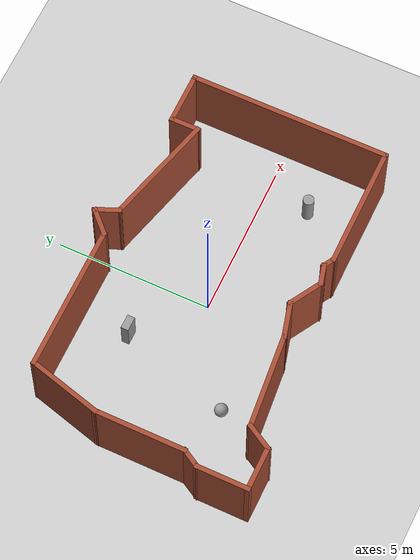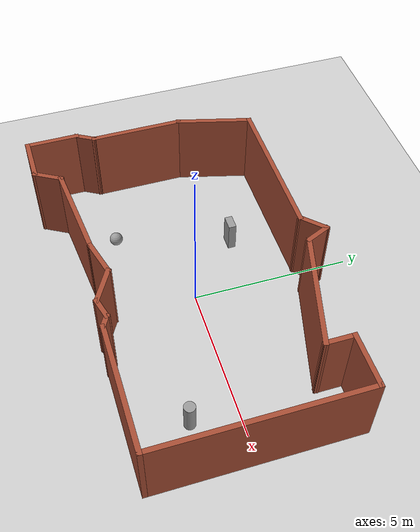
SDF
<sdf version="1.7">
 <world name="default">
  <light name="sun" type="directional">
   <pose>0 0 10 0 -0 0</pose>
   <diffuse>0.8 0.8 0.8 1</diffuse>
   <specular>0.2 0.2 0.2 1</specular>
   <attenuation>
    <range>1000</range>
    <constant>0.9</constant>
    <linear>0.01</linear>
    <quadratic>0.001</quadratic>
   </attenuation>
   <direction>-0.5 0.1 -0.9</direction>
   <spot><inner_angle>0</inner_angle><outer_angle>0</outer_angle><falloff>0</falloff></spot>
  </light>
  <model name="ground_plane">
   <static>1</static>
   <link name="link">
    <collision name="collision">
     <geometry><plane><normal>0 0 1</normal><size>100 100</size></plane></geometry>
     <surface><friction><ode><mu>100</mu><mu2>50</mu2></ode></friction></surface>
    </collision>
    <visual name="visual">
     <cast_shadows>0</cast_shadows>
     <geometry><plane><normal>0 0 1</normal><size>100 100</size></plane></geometry>
     <material>
      <script><uri>file://media/materials/scripts/gazebo.material</uri><name>Gazebo/Grey</name></script>
     </material>
    </visual>
   </link>
  </model>
  <gravity>0 0 -9.8</gravity>
  <magnetic_field>6e-06 2.3e-05 -4.2e-05</magnetic_field>
  <atmosphere type="adiabatic"/>
  <physics type="ode">
   <max_step_size>0.001</max_step_size>
   <real_time_factor>1</real_time_factor>
   <real_time_update_rate>1000</real_time_update_rate>
  </physics>
  <scene><ambient>0.4 0.4 0.4 1</ambient><background>0.7 0.7 0.7 1</background><shadows>1</shadows></scene>
  <spherical_coordinates>
   <surface_model>EARTH_WGS84</surface_model>
   <latitude_deg>0</latitude_deg>
   <longitude_deg>0</longitude_deg>
   <elevation>0</elevation>
   <heading_deg>0</heading_deg>
  </spherical_coordinates>
  <model name="room_torta">
   <pose>0.05403 0.00311 0 0 -0 0</pose>
   <link name="Wall_10">
    <collision name="Wall_10_Collision">
     <geometry><box><size>1 0.15 2.5</size></box></geometry>
     <pose>0 0 1.25 0 -0 0</pose>
    </collision>
    <visual name="Wall_10_Visual">
     <pose>0 0 1.25 0 -0 0</pose>
     <geometry><box><size>1 0.15 2.5</size></box></geometry>
     <material>
      <script><uri>file://media/materials/scripts/gazebo.material</uri><name>Gazebo/Bricks</name></script>
      <ambient>1 1 1 1</ambient>
     </material>
     <meta><layer>0</layer></meta>
    </visual>
    <pose>-4.16127 -3.55404 0 0 -0 -2.0944</pose>
   </link>
   <link name="Wall_11">
    <collision name="Wall_11_Collision">
     <geometry><box><size>1.5 0.15 2.5</size></box></geometry>
     <pose>0 0 1.25 0 -0 0</pose>
    </collision>
    <visual name="Wall_11_Visual">
     <pose>0 0 1.25 0 -0 0</pose>
     <geometry><box><size>1.5 0.15 2.5</size></box></geometry>
     <material>
      <script><uri>file://media/materials/scripts/gazebo.material</uri><name>Gazebo/Bricks</name></script>
      <ambient>1 1 1 1</ambient>
     </material>
     <meta><layer>0</layer></meta>
    </visual>
    <pose>-5.04877 -3.9221 0 0 -0 3.14159</pose>
   </link>
   <link name="Wall_12">
    <collision name="Wall_12_Collision">
     <geometry><box><size>1.75 0.15 2.5</size></box></geometry>
     <pose>0 0 1.25 0 -0 0</pose>
    </collision>
    <visual name="Wall_12_Visual">
     <pose>0 0 1.25 0 -0 0</pose>
     <geometry><box><size>1.75 0.15 2.5</size></box></geometry>
     <material>
      <script><uri>file://media/materials/scripts/gazebo.material</uri><name>Gazebo/Bricks</name></script>
      <ambient>1 1 1 1</ambient>
     </material>
     <meta><layer>0</layer></meta>
    </visual>
    <pose>-5.72377 -3.1221 0 0 -0 1.5708</pose>
   </link>
   <link name="Wall_13">
    <collision name="Wall_13_Collision">
     <geometry><box><size>0.75 0.15 2.5</size></box></geometry>
     <pose>0 0 1.25 0 -0 0</pose>
    </collision>
    <visual name="Wall_13_Visual">
     <pose>0 0 1.25 0 -0 0</pose>
     <geometry><box><size>0.75 0.15 2.5</size></box></geometry>
     <material>
      <script><uri>file://media/materials/scripts/gazebo.material</uri><name>Gazebo/Bricks</name></script>
      <ambient>1 1 1 1</ambient>
     </material>
     <meta><layer>0</layer></meta>
    </visual>
    <pose>-5.57377 -2.06229 0 0 -0 1.0472</pose>
   </link>
   <link name="Wall_14">
    <collision name="Wall_14_Collision">
     <geometry><box><size>3 0.15 2.5</size></box></geometry>
     <pose>0 0 1.25 0 -0 0</pose>
    </collision>
    <visual name="Wall_14_Visual">
     <pose>0 0 1.25 0 -0 0</pose>
     <geometry><box><size>3 0.15 2.5</size></box></geometry>
     <material>
      <script><uri>file://media/materials/scripts/gazebo.material</uri><name>Gazebo/Bricks</name></script>
      <ambient>1 1 1 1</ambient>
     </material>
     <meta><layer>0</layer></meta>
    </visual>
    <pose>-5.42377 -0.377483 0 0 -0 1.5708</pose>
   </link>
   <link name="Wall_15">
    <collision name="Wall_15_Collision">
     <geometry><box><size>2.5 0.15 2.5</size></box></geometry>
     <pose>0 0 1.25 0 -0 0</pose>
    </collision>
    <visual name="Wall_15_Visual">
     <pose>0 0 1.25 0 -0 0</pose>
     <geometry><box><size>2.5 0.15 2.5</size></box></geometry>
     <material>
      <script><uri>file://media/materials/scripts/gazebo.material</uri><name>Gazebo/Bricks</name></script>
      <ambient>1 1 1 1</ambient>
     </material>
     <meta><layer>0</layer></meta>
    </visual>
    <pose>-5.11966 2.18248 0 0 -0 1.309</pose>
   </link>
   <link name="Wall_16">
    <collision name="Wall_16_Collision">
     <geometry><box><size>4.75 0.15 2.5</size></box></geometry>
     <pose>0 0 1.25 0 -0 0</pose>
    </collision>
    <visual name="Wall_16_Visual">
     <pose>0 0 1.25 0 -0 0</pose>
     <geometry><box><size>4.75 0.15 2.5</size></box></geometry>
     <material>
      <script><uri>file://media/materials/scripts/gazebo.material</uri><name>Gazebo/Bricks</name></script>
      <ambient>1 1 1 1</ambient>
     </material>
     <meta><layer>0</layer></meta>
    </visual>
    <pose>-2.51555 3.31744 0 0 -0 0</pose>
   </link>
   <link name="Wall_17">
    <collision name="Wall_17_Collision">
     <geometry><box><size>1 0.15 2.5</size></box></geometry>
     <pose>0 0 1.25 0 -0 0</pose>
    </collision>
    <visual name="Wall_17_Visual">
     <pose>0 0 1.25 0 -0 0</pose>
     <geometry><box><size>1 0.15 2.5</size></box></geometry>
     <material>
      <script><uri>file://media/materials/scripts/gazebo.material</uri><name>Gazebo/Bricks</name></script>
      <ambient>1 1 1 1</ambient>
     </material>
     <meta><layer>0</layer></meta>
    </visual>
    <pose>0.084971 3.61796 0 0 -0 0.785398</pose>
   </link>
   <link name="Wall_18">
    <collision name="Wall_18_Collision">
     <geometry><box><size>0.881926 0.15 2.5</size></box></geometry>
     <pose>0 0 1.25 0 -0 0</pose>
    </collision>
    <visual name="Wall_18_Visual">
     <pose>0 0 1.25 0 -0 0</pose>
     <geometry><box><size>0.881926 0.15 2.5</size></box></geometry>
     <material>
      <script><uri>file://media/materials/scripts/gazebo.material</uri><name>Gazebo/Bricks</name></script>
      <ambient>1 1 1 1</ambient>
     </material>
     <meta><layer>0</layer></meta>
    </visual>
    <pose>0.529692 3.58213 0 0 -0 -1.16578</pose>
   </link>
   <link name="Wall_20">
    <collision name="Wall_20_Collision">
     <geometry><box><size>0.5 0.15 2.5</size></box></geometry>
     <pose>0 0 1.25 0 -0 0</pose>
    </collision>
    <visual name="Wall_20_Visual">
     <pose>0 0 1.25 0 -0 0</pose>
     <geometry><box><size>0.5 0.15 2.5</size></box></geometry>
     <material>
      <script><uri>file://media/materials/scripts/gazebo.material</uri><name>Gazebo/Bricks</name></script>
      <ambient>1 1 1 1</ambient>
     </material>
     <meta><layer>0</layer></meta>
    </visual>
    <pose>1.74967 -3.09848 0 0 -0 2.61799</pose>
   </link>
   <link name="Wall_21">
    <collision name="Wall_21_Collision">
     <geometry><box><size>0.75 0.15 2.5</size></box></geometry>
     <pose>0 0 1.25 0 -0 0</pose>
    </collision>
    <visual name="Wall_21_Visual">
     <pose>0 0 1.25 0 -0 0</pose>
     <geometry><box><size>0.75 0.15 2.5</size></box></geometry>
     <material>
      <script><uri>file://media/materials/scripts/gazebo.material</uri><name>Gazebo/Bricks</name></script>
      <ambient>1 1 1 1</ambient>
     </material>
     <meta><layer>0</layer></meta>
    </visual>
    <pose>1.30834 -3.08862 0 0 -0 -2.87979</pose>
   </link>
   <link name="Wall_22">
    <collision name="Wall_22_Collision">
     <geometry><box><size>1.25 0.15 2.5</size></box></geometry>
     <pose>0 0 1.25 0 -0 0</pose>
    </collision>
    <visual name="Wall_22_Visual">
     <pose>0 0 1.25 0 -0 0</pose>
     <geometry><box><size>1.25 0.15 2.5</size></box></geometry>
     <material>
      <script><uri>file://media/materials/scripts/gazebo.material</uri><name>Gazebo/Bricks</name></script>
      <ambient>1 1 1 1</ambient>
     </material>
     <meta><layer>0</layer></meta>
    </visual>
    <pose>0.542248 -2.89127 0 0 -0 2.61799</pose>
   </link>
   <link name="Wall_23">
    <collision name="Wall_23_Collision">
     <geometry><box><size>1.25 0.15 2.5</size></box></geometry>
     <pose>0 0 1.25 0 -0 0</pose>
    </collision>
    <visual name="Wall_23_Visual">
     <pose>0 0 1.25 0 -0 0</pose>
     <geometry><box><size>1.25 0.15 2.5</size></box></geometry>
     <material>
      <script><uri>file://media/materials/scripts/gazebo.material</uri><name>Gazebo/Bricks</name></script>
      <ambient>1 1 1 1</ambient>
     </material>
     <meta><layer>0</layer></meta>
    </visual>
    <pose>-0.465326 -2.75862 0 0 -0 -2.87979</pose>
   </link>
   <link name="Wall_24">
    <collision name="Wall_24_Collision">
     <geometry><box><size>3.11592 0.15 2.5</size></box></geometry>
     <pose>0 0 1.25 0 -0 0</pose>
    </collision>
    <visual name="Wall_24_Visual">
     <pose>0 0 1.25 0 -0 0</pose>
     <geometry><box><size>3.11592 0.15 2.5</size></box></geometry>
     <material>
      <script><uri>file://media/materials/scripts/gazebo.material</uri><name>Gazebo/Bricks</name></script>
      <ambient>1 1 1 1</ambient>
     </material>
     <meta><layer>0</layer></meta>
    </visual>
    <pose>-2.47268 -3.04347 0 0 -0 -3.04535</pose>
   </link>
   <link name="Wall_4">
    <collision name="Wall_4_Collision">
     <geometry><box><size>3.75 0.15 2.5</size></box></geometry>
     <pose>0 0 1.25 0 -0 0</pose>
    </collision>
    <visual name="Wall_4_Visual">
     <pose>0 0 1.25 0 -0 0</pose>
     <geometry><box><size>3.75 0.15 2.5</size></box></geometry>
     <material>
      <script><uri>file://media/materials/scripts/gazebo.material</uri><name>Gazebo/Bricks</name></script>
      <ambient>1 1 1 1</ambient>
     </material>
     <meta><layer>0</layer></meta>
    </visual>
    <pose>2.41256 2.7799 0 0 -0 -0.261799</pose>
   </link>
   <link name="Wall_5">
    <collision name="Wall_5_Collision">
     <geometry><box><size>1 0.15 2.5</size></box></geometry>
     <pose>0 0 1.25 0 -0 0</pose>
    </collision>
    <visual name="Wall_5_Visual">
     <pose>0 0 1.25 0 -0 0</pose>
     <geometry><box><size>1 0.15 2.5</size></box></geometry>
     <material>
      <script><uri>file://media/materials/scripts/gazebo.material</uri><name>Gazebo/Bricks</name></script>
      <ambient>1 1 1 1</ambient>
     </material>
     <meta><layer>0</layer></meta>
    </visual>
    <pose>4.15123 2.73902 0 0 -0 1.5708</pose>
   </link>
   <link name="Wall_6">
    <collision name="Wall_6_Collision">
     <geometry><box><size>1.75 0.15 2.5</size></box></geometry>
     <pose>0 0 1.25 0 -0 0</pose>
    </collision>
    <visual name="Wall_6_Visual">
     <pose>0 0 1.25 0 -0 0</pose>
     <geometry><box><size>1.75 0.15 2.5</size></box></geometry>
     <material>
      <script><uri>file://media/materials/scripts/gazebo.material</uri><name>Gazebo/Bricks</name></script>
      <ambient>1 1 1 1</ambient>
     </material>
     <meta><layer>0</layer></meta>
    </visual>
    <pose>4.95123 3.16402 0 0 -0 0</pose>
   </link>
   <link name="Wall_7">
    <collision name="Wall_7_Collision">
     <geometry><box><size>6.5 0.15 2.5</size></box></geometry>
     <pose>0 0 1.25 0 -0 0</pose>
    </collision>
    <visual name="Wall_7_Visual">
     <pose>0 0 1.25 0 -0 0</pose>
     <geometry><box><size>6.5 0.15 2.5</size></box></geometry>
     <material>
      <script><uri>file://media/materials/scripts/gazebo.material</uri><name>Gazebo/Bricks</name></script>
      <ambient>1 1 1 1</ambient>
     </material>
     <meta><layer>0</layer></meta>
    </visual>
    <pose>5.75123 -0.010976 0 0 -0 -1.5708</pose>
   </link>
   <link name="Wall_8">
    <collision name="Wall_8_Collision">
     <geometry><box><size>4 0.15 2.5</size></box></geometry>
     <pose>0 0 1.25 0 -0 0</pose>
    </collision>
    <visual name="Wall_8_Visual">
     <pose>0 0 1.25 0 -0 0</pose>
     <geometry><box><size>4 0.15 2.5</size></box></geometry>
     <material>
      <script><uri>file://media/materials/scripts/gazebo.material</uri><name>Gazebo/Bricks</name></script>
      <ambient>1 1 1 1</ambient>
     </material>
     <meta><layer>0</layer></meta>
    </visual>
    <pose>3.82623 -3.18598 0 0 -0 3.14159</pose>
   </link>
   <static>1</static>
  </model>
  <model name="unit_cylinder">
   <pose>4.17313 -1.43946 0.49999 0 -0 3.4e-05</pose>
   <link name="link">
    <inertial>
     <mass>1</mass>
     <inertia><ixx>0.145833</ixx><ixy>0</ixy><ixz>0</ixz><iyy>0.145833</iyy><iyz>0</iyz><izz>0.125</izz></inertia>
    </inertial>
    <collision name="collision">
     <geometry><cylinder><radius>0.175032</radius><length>1</length></cylinder></geometry>
    </collision>
    <visual name="visual">
     <geometry><cylinder><radius>0.175032</radius><length>1</length></cylinder></geometry>
     <material>
      <script><name>Gazebo/Grey</name><uri>file://media/materials/scripts/gazebo.material</uri></script>
     </material>
    </visual>
   </link>
  </model>
  <model name="unit_box">
   <pose>-1.87728 1.74825 0.500001 -2e-06 -2e-06 4e-05</pose>
   <link name="link">
    <inertial>
     <mass>1</mass>
     <inertia>
      <ixx>0.166667</ixx>
      <ixy>0</ixy>
      <ixz>0</ixz>
      <iyy>0.166667</iyy>
      <iyz>0</iyz>
      <izz>0.166667</izz>
     </inertia>
    </inertial>
    <collision name="collision"><geometry><box><size>0.459116 0.243097 1</size></box></geometry></collision>
    <visual name="visual">
     <geometry><box><size>0.459116 0.243097 1</size></box></geometry>
     <material>
      <script><name>Gazebo/Grey</name><uri>file://media/materials/scripts/gazebo.material</uri></script>
     </material>
    </visual>
   </link>
  </model>
  <model name="unit_sphere">
   <pose>-2.94879 -1.82771 0.209601 0 -0 0</pose>
   <link name="link">
    <inertial>
     <mass>1</mass>
     <inertia><ixx>0.1</ixx><ixy>0</ixy><ixz>0</ixz><iyy>0.1</iyy><iyz>0</iyz><izz>0.1</izz></inertia>
    </inertial>
    <collision name="collision"><geometry><sphere><radius>0.209601</radius></sphere></geometry></collision>
    <visual name="visual">
     <geometry><sphere><radius>0.209601</radius></sphere></geometry>
     <material>
      <script><name>Gazebo/Grey</name><uri>file://media/materials/scripts/gazebo.material</uri></script>
     </material>
    </visual>
   </link>
  </model>
 </world>
</sdf>
